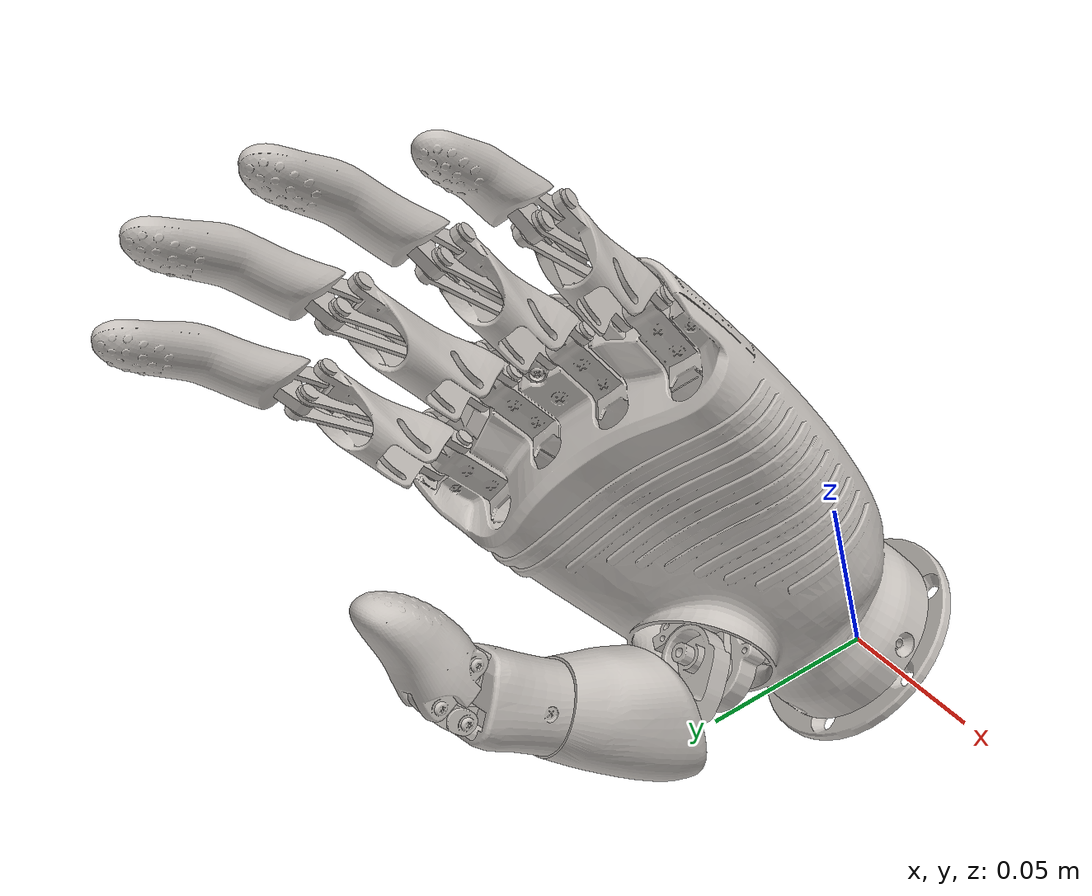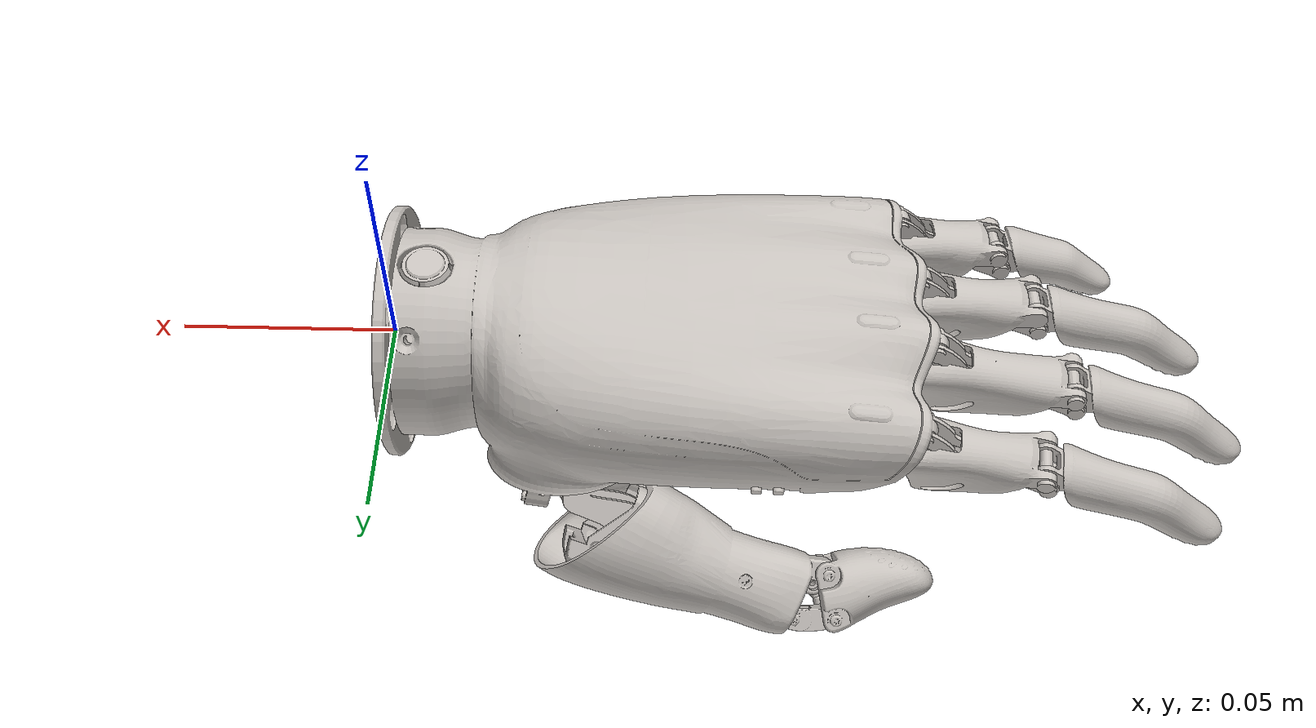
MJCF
<mujoco model="rohand_left">
  <compiler angle="radian" />
  <asset>
    <mesh name="base_link" content_type="model/stl" file="../assets/meshes_l/base_link.STL"/>
    <mesh name="if_proximal_link" content_type="model/stl" file="../assets/meshes_l/if_proximal_link.STL"/>
    <mesh name="if_distal_link" content_type="model/stl" file="../assets/meshes_l/if_distal_link.STL"/>
    <mesh name="if_connecting_link" content_type="model/stl" file="../assets/meshes_l/if_connecting_link.STL"/>
    <mesh name="mf_proximal_link" content_type="model/stl" file="../assets/meshes_l/mf_proximal_link.STL"/>
    <mesh name="mf_distal_link" content_type="model/stl" file="../assets/meshes_l/mf_distal_link.STL"/>
    <mesh name="mf_connecting_link" content_type="model/stl" file="../assets/meshes_l/mf_connecting_link.STL"/>
    <mesh name="rf_proximal_link" content_type="model/stl" file="../assets/meshes_l/rf_proximal_link.STL"/>
    <mesh name="rf_distal_link" content_type="model/stl" file="../assets/meshes_l/rf_distal_link.STL"/>
    <mesh name="rf_connecting_link" content_type="model/stl" file="../assets/meshes_l/rf_connecting_link.STL"/>
    <mesh name="lf_proximal_link" content_type="model/stl" file="../assets/meshes_l/lf_proximal_link.STL"/>
    <mesh name="lf_distal_link" content_type="model/stl" file="../assets/meshes_l/lf_distal_link.STL"/>
    <mesh name="lf_connecting_link" content_type="model/stl" file="../assets/meshes_l/lf_connecting_link.STL"/>
    <mesh name="th_root_link" content_type="model/stl" file="../assets/meshes_l/th_root_link.STL"/>
    <mesh name="th_slider_connecting_link" content_type="model/stl" file="../assets/meshes_l/th_slider_connecting_link.STL"/>
    <mesh name="th_slider_link" content_type="model/stl" file="../assets/meshes_l/th_slider_link.STL"/>
    <mesh name="th_connecting_link" content_type="model/stl" file="../assets/meshes_l/th_connecting_link.STL"/>
    <mesh name="th_distal_link" content_type="model/stl" file="../assets/meshes_l/th_distal_link.STL"/>
    <mesh name="th_proximal_link" content_type="model/stl" file="../assets/meshes_l/th_proximal_link.STL"/>
  </asset>
  <worldbody>
    <body name="base_link" gravcomp="1">
      <geom type="mesh" rgba="0.776471 0.756863 0.737255 1" mesh="base_link"/>
    </body>
    <body name="th_root_link" pos="-0.049083 0.019878 -0.023022" quat="0.994021 0.000704702 -0.108995 -0.0064266" gravcomp="1">
      <inertial pos="0.00191984 0.00319719 -0.00597433" quat="-0.195508 0.354122 -0.316551 0.858004" mass="0.017482" diaginertia="2.15824e-06 1.78948e-06 8.42171e-07"/>
      <joint name="th_root_link" pos="0 0 0" axis="-1 0 0" range="0 1.57" ref="0.7" damping="0.05"/>
      <geom type="mesh" rgba="0.776471 0.756863 0.737255 1" mesh="th_root_link"/>
      <body name="th_slider_connecting_link" pos="-0.015016 0.0037711 -0.018412" quat="0.655204 -0.265906 0.65981 -0.254268" gravcomp="1">
        <inertial pos="-0.00809998 0.00382843 -0.00282376" quat="0.892632 0.450786 0 0" mass="0.000789049" diaginertia="1.19393e-08 1.07536e-08 1.35034e-09"/>
        <joint name="th_slider_connecting_link" pos="0 0 0" axis="-1 0 0" range="0.0 1.0" ref="0.75" damping="0.03"/>
        <geom type="mesh" rgba="0.776471 0.756863 0.737255 1" mesh="th_slider_connecting_link"/>
        <body name="th_slider_link" pos="0 0.0088364 -0.0065175" gravcomp="1">
          <inertial pos="-0.00804903 0.00193436 -0.00890089" quat="0.702987 0.0761563 -0.0761476 0.703002" mass="0.0752752" diaginertia="6.05507e-08 4.65637e-08 1.9027e-08"/>
          <joint name="th_slider_link" pos="0 0 0" axis="-1 0 0" damping="0.05"/>
          <geom type="mesh" rgba="0.776471 0.756863 0.737255 1" mesh="th_slider_link"/>
          <body name="th_connecting_link" pos="-0.00440345 0.0076881 -0.0314156" quat="0.803914 0.594745 0 0" gravcomp="1">
            <inertial pos="-0.00373227 -0.00464828 -0.00091513" quat="0.467303 0.530686 -0.530686 0.467303" mass="0.0261208" diaginertia="4.35995e-09 3.91261e-09 1.67325e-09"/>
            <joint name="th_connecting_link" pos="0 0 0" axis="-1 0 0"/>
            <geom type="mesh" rgba="0.776471 0.756863 0.737255 1" mesh="th_connecting_link"/>
            <body name="th_distal_link" pos="0.00295 -0.00981212 -0.00131618" gravcomp="1">
              <inertial pos="-0.00665584 -0.0101877 0.00658848" quat="0.453258 0.54272 -0.542731 0.453272" mass="0.1860659" diaginertia="2.36983e-05 1.85862e-05 1.2918e-05"/>
              <joint name="th_distal_link" pos="0 0 0" axis="-1 0 0"/>
              <geom type="mesh" rgba="0.776471 0.756863 0.737255 1" mesh="th_distal_link"/>
            </body>
          </body>
          <body name="th_proximal_link" pos="-0.00394993 0.000195499 0.0109735" quat="0.678228 -0.200017 0.628683 0.323663" gravcomp="1">
            <inertial pos="0.0113547 -0.000312971 -0.00565436" quat="-0.175069 0.696448 -0.301544 0.627202" mass="0.0704476" diaginertia="2.20935e-04 2.05412e-04 6.20846e-05"/>
            <joint name="th_proximal_link" pos="0 0 0" axis="-1 0 0" type="slide" damping="0.5"/>
            <geom type="mesh" rgba="0.776471 0.756863 0.737255 1" mesh="th_proximal_link"/>
          </body>
        </body>
      </body>
    </body>
    <body name="if_proximal_link" pos="-0.11512 0.037554 0.0020566" quat="0.295478 0.609382 -0.687588 -0.261857" gravcomp="1">
      <inertial pos="0.0070298 0.00894962 0.0163319" quat="0.662849 -0.246153 0.246091 0.662933" mass="0.0152443" diaginertia="1.5138e-06 1.35281e-06 5.40981e-07"/>
      <joint name="if_proximal_link" pos="0 0 0" axis="1 0 0" ref="0.1" damping="0.03"/>
      <geom type="mesh" rgba="0.776471 0.756863 0.737255 1" mesh="if_proximal_link"/>
      <body name="if_distal_link" pos="0 0.021096 0.029073" gravcomp="1">
        <inertial pos="0.00697876 0.0067486 0.0235874" quat="0.700497 -0.0949982 0.0951152 0.70088" mass="0.0342358" diaginertia="5.2505e-06 5.24298e-06 5.95152e-07"/>
        <joint name="if_distal_link" pos="0 0 0" axis="1 0 0" damping="0.01"/>
        <geom type="mesh" rgba="0.776471 0.756863 0.737255 1" mesh="if_distal_link"/>
      </body>
    </body>
    <body name="if_connecting_link" pos="-0.12276 0.035302 0.0067253" quat="0.295638 0.609345 -0.68749 -0.262019" gravcomp="1">
      <inertial pos="0.00370009 0.00341586 0.0165511" quat="0.701491 -0.0889417 0.0889417 0.701491" mass="0.00267235" diaginertia="4.96063e-07 4.86522e-07 1.90482e-08"/>
      <joint name="if_connecting_link" pos="0 0 0" axis="1 0 0"/>
      <geom type="mesh" rgba="0.776471 0.756863 0.737255 1" mesh="if_connecting_link"/>
    </body>
    <body name="mf_proximal_link" pos="-0.11888 0.01765 0.0069653" quat="0.00334089 0.702842 -0.71133 -0.00330105" gravcomp="1">
      <inertial pos="0.0070074 0.0203658 0.00677331" quat="0.466516 0.531416 -0.531075 0.466818" mass="0.0182531" diaginertia="2.54837e-06 2.38777e-06 6.77106e-07"/>
      <joint name="mf_proximal_link" pos="0 0 0" axis="1 0 0" ref="0.1" damping="0.03"/>
      <geom type="mesh" rgba="0.776471 0.756863 0.737255 1" mesh="mf_proximal_link"/>
      <body name="mf_distal_link" pos="0 0.0402408 0.00789236" gravcomp="1">
        <inertial pos="0.00693657 0.0214322 0.0119471" quat="0.355221 0.611869 -0.610762 0.355534" mass="0.0342357" diaginertia="5.2505e-06 5.24298e-06 5.95151e-07"/>
        <joint name="mf_distal_link" pos="0 0 0" axis="1 0 0" damping="0.01"/>
        <geom type="mesh" rgba="0.776471 0.756863 0.737255 1" mesh="mf_distal_link"/>
      </body>
    </body>
    <body name="mf_connecting_link" pos="-0.12634 0.01443 0.011366" quat="0.000566851 -0.702423 0.711759 -0.000559398" gravcomp="1">
      <inertial pos="0.00370005 0.0163936 0.0102722" quat="0.357408 0.610131 -0.610131 0.357408" mass="0.00285033" diaginertia="6.82745e-07 6.72641e-07 2.02362e-08"/>
      <joint name="mf_connecting_link" pos="0 0 0" axis="1 0 0"/>
      <geom type="mesh" rgba="0.776471 0.756863 0.737255 1" mesh="mf_connecting_link"/>
    </body>
    <body name="rf_proximal_link" pos="-0.11663 -0.002443 0.0062162" quat="0.726796 -4.00974e-05 3.78937e-05 -0.686853" gravcomp="1">
      <inertial pos="0.00704135 -0.0178884 -0.0046376" quat="0.483953 0.515519 -0.515557 0.483973" mass="0.0151473" diaginertia="1.51374e-06 1.35267e-06 5.40891e-07"/>
      <joint name="rf_proximal_link" pos="0 0 0" axis="1 0 0" ref="0.1" damping="0.03"/>
      <geom type="mesh" rgba="0.776471 0.756863 0.737255 1" mesh="rf_proximal_link"/>
      <body name="rf_distal_link" pos="0 -0.035592 -0.0048427" gravcomp="1">
        <inertial pos="0.00697877 -0.0217085 -0.0114017" quat="0.3627 0.606553 -0.607179 0.363148" mass="0.0342355" diaginertia="5.25042e-06 5.2429e-06 5.95154e-07"/>
        <joint name="rf_distal_link" pos="0 0 0" axis="0.997657 -0.0684163 -0.000525256" damping="0.01"/>
        <geom type="mesh" rgba="0.776471 0.756863 0.737255 1" mesh="rf_distal_link"/>
      </body>
    </body>
    <body name="rf_connecting_link" pos="-0.12385 -0.0061309 0.010616" quat="0.726831 -0.000127601 0.000135037 -0.686817" gravcomp="1">
      <inertial pos="0.00370009 -0.0143262 -0.00896467" quat="0.357577 0.610032 -0.610032 0.357577" mass="0.00267235" diaginertia="4.96063e-07 4.86522e-07 1.90482e-08"/>
      <joint name="rf_connecting_link" pos="0 0 0" axis="1 0 0"/>
      <geom type="mesh" rgba="0.776471 0.756863 0.737255 1" mesh="rf_connecting_link"/>
    </body>
    <body name="lf_proximal_link" pos="-0.11331 -0.022575 0.0042735" quat="0.719041 -0.204609 0.237125 -0.620393" gravcomp="1">
      <inertial pos="0.00699992 -0.0101266 -0.01254" quat="0.289166 0.645275 -0.645279 0.289168" mass="0.0142656" diaginertia="1.53678e-06 1.36656e-06 5.17078e-07"/>
      <joint name="lf_proximal_link" pos="0 0 0" axis="1 0 0" ref="0.1" damping="0.03"/>
      <geom type="mesh" rgba="0.776471 0.756863 0.737255 1" mesh="lf_proximal_link"/>
      <body name="lf_distal_link" pos="0 -0.0227178 -0.0224385" gravcomp="1">
        <inertial pos="0.00705269 -0.00763281 -0.0155353" quat="0.690987 -0.150197 0.15019 0.690956" mass="0.0202843" diaginertia="1.52435e-06 1.4952e-06 3.06212e-07"/>
        <joint name="lf_distal_link" pos="0 0 0" axis="1 0 0" damping="0.01"/>
        <geom type="mesh" rgba="0.776471 0.756863 0.737255 1" mesh="lf_distal_link"/>
      </body>
    </body>
    <body name="lf_connecting_link" pos="-0.120243 -0.0270965 0.0083686" quat="0.719028 -0.204605 0.23713 -0.620407" gravcomp="1">
      <inertial pos="0.00370001 -0.00492796 -0.0142868" quat="0.694427 -0.13331 0.13331 0.694427" mass="0.00247299" diaginertia="3.87303e-07 3.78315e-07 1.76363e-08"/>
      <joint name="lf_connecting_link" pos="0 0 0" axis="1 0 0"/>
      <geom type="mesh" rgba="0.776471 0.756863 0.737255 1" mesh="lf_connecting_link"/>
    </body>
  </worldbody>
  <contact>
    <exclude body1="base_link" body2="if_proximal_link"/>
    <exclude body1="base_link" body2="if_distal_link"/>
    <exclude body1="base_link" body2="if_connecting_link"/>
    <exclude body1="if_connecting_link" body2="if_proximal_link"/>
    <exclude body1="if_connecting_link" body2="if_distal_link"/>
    <exclude body1="if_proximal_link" body2="if_distal_link"/>
    <exclude body1="base_link" body2="mf_proximal_link"/>
    <exclude body1="base_link" body2="mf_distal_link"/>
    <exclude body1="base_link" body2="mf_connecting_link"/>
    <exclude body1="mf_connecting_link" body2="mf_proximal_link"/>
    <exclude body1="mf_connecting_link" body2="mf_distal_link"/>
    <exclude body1="mf_proximal_link" body2="mf_distal_link"/>
    <exclude body1="base_link" body2="rf_proximal_link"/>
    <exclude body1="base_link" body2="rf_distal_link"/>
    <exclude body1="base_link" body2="rf_connecting_link"/>
    <exclude body1="rf_connecting_link" body2="rf_proximal_link"/>
    <exclude body1="rf_connecting_link" body2="rf_distal_link"/>
    <exclude body1="rf_proximal_link" body2="rf_distal_link"/>
    <exclude body1="base_link" body2="lf_proximal_link"/>
    <exclude body1="base_link" body2="lf_connecting_link"/>
    <exclude body1="lf_proximal_link" body2="lf_distal_link"/>
    <exclude body1="lf_connecting_link" body2="lf_proximal_link"/>
    <exclude body1="lf_connecting_link" body2="lf_distal_link"/>
    <exclude body1="base_link" body2="th_root_link"/>
    <exclude body1="th_root_link" body2="base_link"/>
    <exclude body1="th_root_link" body2="th_slider_connecting_link"/>
    <exclude body1="th_root_link" body2="th_slider_link"/>
    <exclude body1="th_root_link" body2="th_connecting_link"/>
    <exclude body1="th_root_link" body2="th_distal_link"/>
    <exclude body1="th_root_link" body2="th_proximal_link"/>
    <exclude body1="th_slider_connecting_link" body2="base_link"/>
    <exclude body1="th_slider_connecting_link" body2="th_slider_link"/>
    <exclude body1="th_slider_connecting_link" body2="th_connecting_link"/>
    <exclude body1="th_slider_connecting_link" body2="th_distal_link"/>
    <exclude body1="th_slider_connecting_link" body2="th_proximal_link"/>
    <exclude body1="th_slider_link" body2="base_link"/>
    <exclude body1="th_slider_link" body2="th_connecting_link"/>
    <exclude body1="th_slider_link" body2="th_distal_link"/>
    <exclude body1="th_slider_link" body2="th_proximal_link"/>
    <exclude body1="th_connecting_link" body2="base_link"/>
    <exclude body1="th_connecting_link" body2="th_distal_link"/>
    <exclude body1="th_connecting_link" body2="th_proximal_link"/>
    <exclude body1="th_distal_link" body2="base_link"/>
    <exclude body1="th_distal_link" body2="th_proximal_link"/>
    <exclude body1="th_proximal_link" body2="base_link"/>
  </contact>
  <equality>
    <connect body1="if_distal_link" body2="if_connecting_link" anchor="0.00328 -0.00436 0.00634" solimp="0.95 0.99 0.001" solref="0.005 1"/>
    <connect body1="mf_distal_link" body2="mf_connecting_link" anchor="0.00326 0.00138 0.00756" solimp="0.95 0.99 0.001" solref="0.005 1"/>
    <connect body1="rf_distal_link" body2="rf_connecting_link" anchor="0.00328 -0.00157 -0.00753" solimp="0.95 0.99 0.001" solref="0.005 1"/>
    <connect body1="lf_distal_link" body2="lf_connecting_link" anchor="0.00330 0.00266 -0.00704" solimp="0.95 0.99 0.001" solref="0.005 1"/>
    <connect body1="th_proximal_link" body2="th_root_link" anchor="-0.0046 -0.0055 0.002" solimp="0.95 0.99 0.001" solref="0.005 1"/>
    <connect body1="th_distal_link" body2="th_proximal_link" anchor="0 0.00027 0.0113" solimp="0.8 0.95 0.001" solref="0.005 1"/>
  </equality>
  <actuator>
    <position name="index_finger" joint="if_proximal_link" kp="1" ctrlrange="0 1.44"/>
    <position name="middle_finger" joint="mf_proximal_link" kp="1" ctrlrange="0 1.44"/>
    <position name="ring_finger" joint="rf_proximal_link" kp="1" ctrlrange="0 1.44"/>
    <position name="little_finger" joint="lf_proximal_link" kp="1" ctrlrange="0 1.44"/>
    <position name="thumb_root" joint="th_root_link" kp="1" ctrlrange="0 1.57"/>
    <position name="thumb" joint="th_slider_connecting_link" kp="1" ctrlrange="0.0 1.0"/>
  </actuator>
</mujoco>
